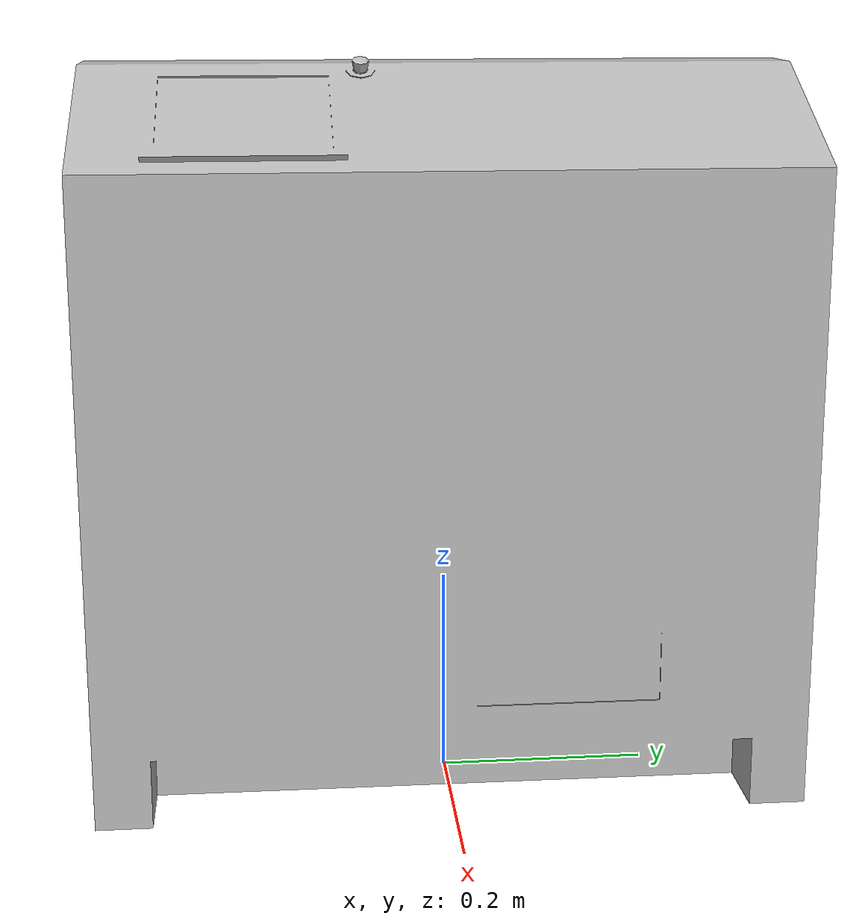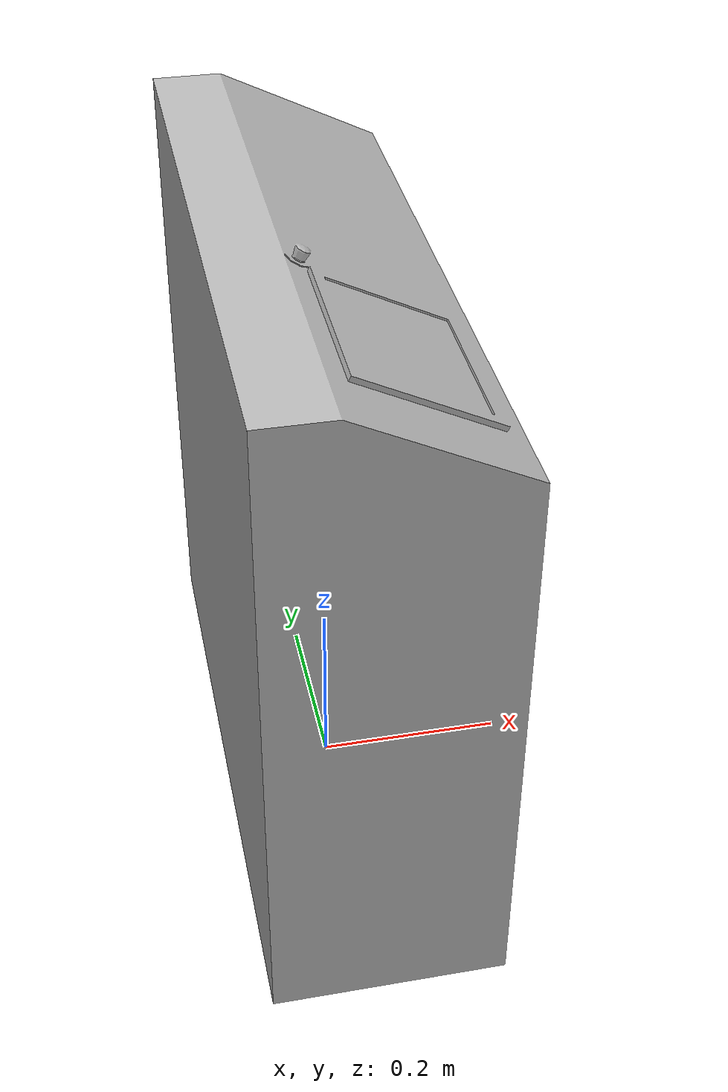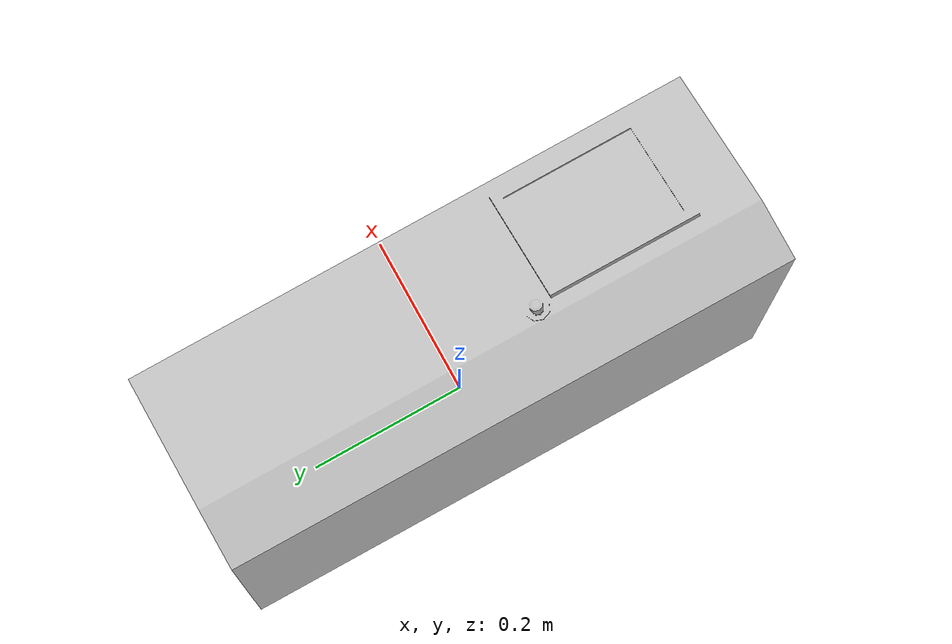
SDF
<?xml version="1.0"?>

<sdf version="1.6">
  <model name='HospitalRobotCharger'>
    <link name="body">
      <pose>0 0 0 0 0 0</pose>

      <visual name="visual">
        <geometry>
          <mesh>
            <uri>model://HospitalRobotCharger/meshes/HospitalRobotCharger.obj</uri>
          </mesh>
        </geometry>
      </visual>

      <collision name="collision">
        <geometry>
          <mesh>
            <uri>model://HospitalRobotCharger/meshes/HospitalRobotCharger.obj</uri>
          </mesh>
        </geometry>
      </collision>

    </link>
  </model>
</sdf>
